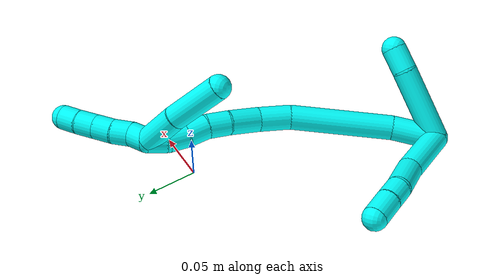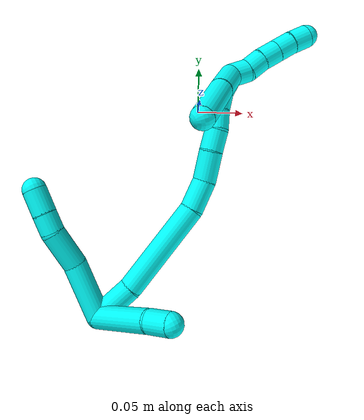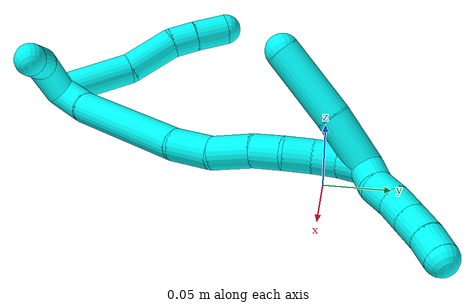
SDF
<sdf version="1.7">
 <world name="default">
  <model name="3">
   <static>0</static>
   <link name="3">
    <collision name="collision-cylinder-e_1_2_8">
     <pose>0.021013 0.022057 0.000849 -1.53234 0.760809 -0.734656</pose>
     <geometry><cylinder><radius>0.0125</radius><length>0.060951</length></cylinder></geometry>
     <surface>
      <friction><ode><mu>1.16</mu><mu2>1.16</mu2><slip1>0</slip1><slip2>0</slip2></ode></friction>
      <contact><ode><kp>1e+06</kp><kd>1</kd><max_vel>0</max_vel><min_depth>0.001</min_depth></ode></contact>
     </surface>
    </collision>
    <visual name="visual-cylinder-e_1_2_8">
     <pose>0.021013 0.022057 0.000849 -1.53234 0.760809 -0.734656</pose>
     <geometry><cylinder><radius>0.0125</radius><length>0.060951</length></cylinder></geometry>
     <material><ambient>0.003922 1 0.996078 1</ambient></material>
    </visual>
    <collision name="collision-cylinder-e_2_8_9">
     <pose>0.057944 0.056402 0.006329 -1.21037 0.880973 -0.630427</pose>
     <geometry><cylinder><radius>0.0125</radius><length>0.041271</length></cylinder></geometry>
     <surface>
      <friction><ode><mu>1.16</mu><mu2>1.16</mu2><slip1>0</slip1><slip2>0</slip2></ode></friction>
      <contact><ode><kp>1e+06</kp><kd>1</kd><max_vel>0</max_vel><min_depth>0.001</min_depth></ode></contact>
     </surface>
    </collision>
    <visual name="visual-cylinder-e_2_8_9">
     <pose>0.057944 0.056402 0.006329 -1.21037 0.880973 -0.630427</pose>
     <geometry><cylinder><radius>0.0125</radius><length>0.041271</length></cylinder></geometry>
     <material><ambient>0.003922 1 0.996078 1</ambient></material>
    </visual>
    <collision name="collision-cylinder-e_3_9_10">
     <pose>0.080882 0.076382 0.011166 -1.54406 0.739667 -0.721823</pose>
     <geometry><cylinder><radius>0.0125</radius><length>0.020831</length></cylinder></geometry>
     <surface>
      <friction><ode><mu>1.16</mu><mu2>1.16</mu2><slip1>0</slip1><slip2>0</slip2></ode></friction>
      <contact><ode><kp>1e+06</kp><kd>1</kd><max_vel>0</max_vel><min_depth>0.001</min_depth></ode></contact>
     </surface>
    </collision>
    <visual name="visual-cylinder-e_3_9_10">
     <pose>0.080882 0.076382 0.011166 -1.54406 0.739667 -0.721823</pose>
     <geometry><cylinder><radius>0.0125</radius><length>0.020831</length></cylinder></geometry>
     <material><ambient>0.003922 1 0.996078 1</ambient></material>
    </visual>
    <collision name="collision-cylinder-e_4_10_6">
     <pose>0.096442 0.094494 0.01137 -1.5709 0.686515 -0.686582</pose>
     <geometry><cylinder><radius>0.0125</radius><length>0.026946</length></cylinder></geometry>
     <surface>
      <friction><ode><mu>1.16</mu><mu2>1.16</mu2><slip1>0</slip1><slip2>0</slip2></ode></friction>
      <contact><ode><kp>1e+06</kp><kd>1</kd><max_vel>0</max_vel><min_depth>0.001</min_depth></ode></contact>
     </surface>
    </collision>
    <visual name="visual-cylinder-e_4_10_6">
     <pose>0.096442 0.094494 0.01137 -1.5709 0.686515 -0.686582</pose>
     <geometry><cylinder><radius>0.0125</radius><length>0.026946</length></cylinder></geometry>
     <material><ambient>0.003922 1 0.996078 1</ambient></material>
    </visual>
    <collision name="collision-cylinder-e_1_2_11">
     <pose>0.020638 -0.02606 -0.017524 2.16279 0.581413 1.02359</pose>
     <geometry><cylinder><radius>0.0125</radius><length>0.075157</length></cylinder></geometry>
     <surface>
      <friction><ode><mu>1.16</mu><mu2>1.16</mu2><slip1>0</slip1><slip2>0</slip2></ode></friction>
      <contact><ode><kp>1e+06</kp><kd>1</kd><max_vel>0</max_vel><min_depth>0.001</min_depth></ode></contact>
     </surface>
    </collision>
    <visual name="visual-cylinder-e_1_2_11">
     <pose>0.020638 -0.02606 -0.017524 2.16279 0.581413 1.02359</pose>
     <geometry><cylinder><radius>0.0125</radius><length>0.075157</length></cylinder></geometry>
     <material><ambient>0.003922 1 0.996078 1</ambient></material>
    </visual>
    <collision name="collision-cylinder-e_2_11_5">
     <pose>0.045948 -0.061174 -0.042153 2.23615 0.385561 0.763272</pose>
     <geometry><cylinder><radius>0.0125</radius><length>0.024843</length></cylinder></geometry>
     <surface>
      <friction><ode><mu>1.16</mu><mu2>1.16</mu2><slip1>0</slip1><slip2>0</slip2></ode></friction>
      <contact><ode><kp>1e+06</kp><kd>1</kd><max_vel>0</max_vel><min_depth>0.001</min_depth></ode></contact>
     </surface>
    </collision>
    <visual name="visual-cylinder-e_2_11_5">
     <pose>0.045948 -0.061174 -0.042153 2.23615 0.385561 0.763272</pose>
     <geometry><cylinder><radius>0.0125</radius><length>0.024843</length></cylinder></geometry>
     <material><ambient>0.003922 1 0.996078 1</ambient></material>
    </visual>
    <collision name="collision-cylinder-e_1_2_12">
     <pose>0.009476 0.001541 -0.020245 -3.06562 0.43668 -2.80233</pose>
     <geometry><cylinder><radius>0.0125</radius><length>0.044812</length></cylinder></geometry>
     <surface>
      <friction><ode><mu>1.16</mu><mu2>1.16</mu2><slip1>0</slip1><slip2>0</slip2></ode></friction>
      <contact><ode><kp>1e+06</kp><kd>1</kd><max_vel>0</max_vel><min_depth>0.001</min_depth></ode></contact>
     </surface>
    </collision>
    <visual name="visual-cylinder-e_1_2_12">
     <pose>0.009476 0.001541 -0.020245 -3.06562 0.43668 -2.80233</pose>
     <geometry><cylinder><radius>0.0125</radius><length>0.044812</length></cylinder></geometry>
     <material><ambient>0.003922 1 0.996078 1</ambient></material>
    </visual>
    <collision name="collision-cylinder-e_2_12_13">
     <pose>0.0455 0.014162 -0.084132 -2.89296 0.532735 -2.28263</pose>
     <geometry><cylinder><radius>0.0125</radius><length>0.104542</length></cylinder></geometry>
     <surface>
      <friction><ode><mu>1.16</mu><mu2>1.16</mu2><slip1>0</slip1><slip2>0</slip2></ode></friction>
      <contact><ode><kp>1e+06</kp><kd>1</kd><max_vel>0</max_vel><min_depth>0.001</min_depth></ode></contact>
     </surface>
    </collision>
    <visual name="visual-cylinder-e_2_12_13">
     <pose>0.0455 0.014162 -0.084132 -2.89296 0.532735 -2.28263</pose>
     <geometry><cylinder><radius>0.0125</radius><length>0.104542</length></cylinder></geometry>
     <material><ambient>0.003922 1 0.996078 1</ambient></material>
    </visual>
    <collision name="collision-cylinder-e_3_13_14">
     <pose>0.081713 0.031797 -0.139525 -2.63276 0.622908 -1.78265</pose>
     <geometry><cylinder><radius>0.0125</radius><length>0.033131</length></cylinder></geometry>
     <surface>
      <friction><ode><mu>1.16</mu><mu2>1.16</mu2><slip1>0</slip1><slip2>0</slip2></ode></friction>
      <contact><ode><kp>1e+06</kp><kd>1</kd><max_vel>0</max_vel><min_depth>0.001</min_depth></ode></contact>
     </surface>
    </collision>
    <visual name="visual-cylinder-e_3_13_14">
     <pose>0.081713 0.031797 -0.139525 -2.63276 0.622908 -1.78265</pose>
     <geometry><cylinder><radius>0.0125</radius><length>0.033131</length></cylinder></geometry>
     <material><ambient>0.003922 1 0.996078 1</ambient></material>
    </visual>
    <collision name="collision-cylinder-e_4_14_15">
     <pose>0.103596 0.045447 -0.159481 -2.42864 0.844751 -1.75775</pose>
     <geometry><cylinder><radius>0.0125</radius><length>0.03268</length></cylinder></geometry>
     <surface>
      <friction><ode><mu>1.16</mu><mu2>1.16</mu2><slip1>0</slip1><slip2>0</slip2></ode></friction>
      <contact><ode><kp>1e+06</kp><kd>1</kd><max_vel>0</max_vel><min_depth>0.001</min_depth></ode></contact>
     </surface>
    </collision>
    <visual name="visual-cylinder-e_4_14_15">
     <pose>0.103596 0.045447 -0.159481 -2.42864 0.844751 -1.75775</pose>
     <geometry><cylinder><radius>0.0125</radius><length>0.03268</length></cylinder></geometry>
     <material><ambient>0.003922 1 0.996078 1</ambient></material>
    </visual>
    <collision name="collision-cylinder-e_5_15_16">
     <pose>0.123361 0.0581 -0.17436 -2.44714 0.715385 -1.6031</pose>
     <geometry><cylinder><radius>0.0125</radius><length>0.023008</length></cylinder></geometry>
     <surface>
      <friction><ode><mu>1.16</mu><mu2>1.16</mu2><slip1>0</slip1><slip2>0</slip2></ode></friction>
      <contact><ode><kp>1e+06</kp><kd>1</kd><max_vel>0</max_vel><min_depth>0.001</min_depth></ode></contact>
     </surface>
    </collision>
    <visual name="visual-cylinder-e_5_15_16">
     <pose>0.123361 0.0581 -0.17436 -2.44714 0.715385 -1.6031</pose>
     <geometry><cylinder><radius>0.0125</radius><length>0.023008</length></cylinder></geometry>
     <material><ambient>0.003922 1 0.996078 1</ambient></material>
    </visual>
    <collision name="collision-cylinder-e_6_16_17">
     <pose>0.137133 0.070945 -0.186217 -2.18915 0.608118 -1.09305</pose>
     <geometry><cylinder><radius>0.0125</radius><length>0.021796</length></cylinder></geometry>
     <surface>
      <friction><ode><mu>1.16</mu><mu2>1.16</mu2><slip1>0</slip1><slip2>0</slip2></ode></friction>
      <contact><ode><kp>1e+06</kp><kd>1</kd><max_vel>0</max_vel><min_depth>0.001</min_depth></ode></contact>
     </surface>
    </collision>
    <visual name="visual-cylinder-e_6_16_17">
     <pose>0.137133 0.070945 -0.186217 -2.18915 0.608118 -1.09305</pose>
     <geometry><cylinder><radius>0.0125</radius><length>0.021796</length></cylinder></geometry>
     <material><ambient>0.003922 1 0.996078 1</ambient></material>
    </visual>
    <collision name="collision-cylinder-e_7_17_18">
     <pose>0.149148 0.083922 -0.19726 -2.37088 0.616711 -1.33133</pose>
     <geometry><cylinder><radius>0.0125</radius><length>0.020019</length></cylinder></geometry>
     <surface>
      <friction><ode><mu>1.16</mu><mu2>1.16</mu2><slip1>0</slip1><slip2>0</slip2></ode></friction>
      <contact><ode><kp>1e+06</kp><kd>1</kd><max_vel>0</max_vel><min_depth>0.001</min_depth></ode></contact>
     </surface>
    </collision>
    <visual name="visual-cylinder-e_7_17_18">
     <pose>0.149148 0.083922 -0.19726 -2.37088 0.616711 -1.33133</pose>
     <geometry><cylinder><radius>0.0125</radius><length>0.020019</length></cylinder></geometry>
     <material><ambient>0.003922 1 0.996078 1</ambient></material>
    </visual>
    <collision name="collision-cylinder-e_8_18_1">
     <pose>0.160641 0.092966 -0.210623 -2.72111 0.606588 -1.94467</pose>
     <geometry><cylinder><radius>0.0125</radius><length>0.020012</length></cylinder></geometry>
     <surface>
      <friction><ode><mu>1.16</mu><mu2>1.16</mu2><slip1>0</slip1><slip2>0</slip2></ode></friction>
      <contact><ode><kp>1e+06</kp><kd>1</kd><max_vel>0</max_vel><min_depth>0.001</min_depth></ode></contact>
     </surface>
    </collision>
    <visual name="visual-cylinder-e_8_18_1">
     <pose>0.160641 0.092966 -0.210623 -2.72111 0.606588 -1.94467</pose>
     <geometry><cylinder><radius>0.0125</radius><length>0.020012</length></cylinder></geometry>
     <material><ambient>0.003922 1 0.996078 1</ambient></material>
    </visual>
    <collision name="collision-cylinder-e_1_1_19">
     <pose>0.171771 0.082863 -0.202764 0.719396 0.259637 0.098112</pose>
     <geometry><cylinder><radius>0.0125</radius><length>0.042268</length></cylinder></geometry>
     <surface>
      <friction><ode><mu>1.16</mu><mu2>1.16</mu2><slip1>0</slip1><slip2>0</slip2></ode></friction>
      <contact><ode><kp>1e+06</kp><kd>1</kd><max_vel>0</max_vel><min_depth>0.001</min_depth></ode></contact>
     </surface>
    </collision>
    <visual name="visual-cylinder-e_1_1_19">
     <pose>0.171771 0.082863 -0.202764 0.719396 0.259637 0.098112</pose>
     <geometry><cylinder><radius>0.0125</radius><length>0.042268</length></cylinder></geometry>
     <material><ambient>0.003922 1 0.996078 1</ambient></material>
    </visual>
    <collision name="collision-cylinder-e_2_19_4">
     <pose>0.181996 0.051188 -0.165526 0.694412 0.16703 0.060565</pose>
     <geometry><cylinder><radius>0.0125</radius><length>0.057732</length></cylinder></geometry>
     <surface>
      <friction><ode><mu>1.16</mu><mu2>1.16</mu2><slip1>0</slip1><slip2>0</slip2></ode></friction>
      <contact><ode><kp>1e+06</kp><kd>1</kd><max_vel>0</max_vel><min_depth>0.001</min_depth></ode></contact>
     </surface>
    </collision>
    <visual name="visual-cylinder-e_2_19_4">
     <pose>0.181996 0.051188 -0.165526 0.694412 0.16703 0.060565</pose>
     <geometry><cylinder><radius>0.0125</radius><length>0.057732</length></cylinder></geometry>
     <material><ambient>0.003922 1 0.996078 1</ambient></material>
    </visual>
    <collision name="collision-cylinder-e_1_1_20">
     <pose>0.166696 0.095245 -0.228064 3.03361 0.035052 0.627264</pose>
     <geometry><cylinder><radius>0.0125</radius><length>0.02</length></cylinder></geometry>
     <surface>
      <friction><ode><mu>1.16</mu><mu2>1.16</mu2><slip1>0</slip1><slip2>0</slip2></ode></friction>
      <contact><ode><kp>1e+06</kp><kd>1</kd><max_vel>0</max_vel><min_depth>0.001</min_depth></ode></contact>
     </surface>
    </collision>
    <visual name="visual-cylinder-e_1_1_20">
     <pose>0.166696 0.095245 -0.228064 3.03361 0.035052 0.627264</pose>
     <geometry><cylinder><radius>0.0125</radius><length>0.02</length></cylinder></geometry>
     <material><ambient>0.003922 1 0.996078 1</ambient></material>
    </visual>
    <collision name="collision-cylinder-e_2_20_21">
     <pose>0.169745 0.095504 -0.247535 -3.00242 0.27322 -2.2031</pose>
     <geometry><cylinder><radius>0.0125</radius><length>0.02</length></cylinder></geometry>
     <surface>
      <friction><ode><mu>1.16</mu><mu2>1.16</mu2><slip1>0</slip1><slip2>0</slip2></ode></friction>
      <contact><ode><kp>1e+06</kp><kd>1</kd><max_vel>0</max_vel><min_depth>0.001</min_depth></ode></contact>
     </surface>
    </collision>
    <visual name="visual-cylinder-e_2_20_21">
     <pose>0.169745 0.095504 -0.247535 -3.00242 0.27322 -2.2031</pose>
     <geometry><cylinder><radius>0.0125</radius><length>0.02</length></cylinder></geometry>
     <material><ambient>0.003922 1 0.996078 1</ambient></material>
    </visual>
    <collision name="collision-cylinder-e_3_21_22">
     <pose>0.174414 0.097002 -0.266874 -3.12497 0.198422 -2.97496</pose>
     <geometry><cylinder><radius>0.0125</radius><length>0.02</length></cylinder></geometry>
     <surface>
      <friction><ode><mu>1.16</mu><mu2>1.16</mu2><slip1>0</slip1><slip2>0</slip2></ode></friction>
      <contact><ode><kp>1e+06</kp><kd>1</kd><max_vel>0</max_vel><min_depth>0.001</min_depth></ode></contact>
     </surface>
    </collision>
    <visual name="visual-cylinder-e_3_21_22">
     <pose>0.174414 0.097002 -0.266874 -3.12497 0.198422 -2.97496</pose>
     <geometry><cylinder><radius>0.0125</radius><length>0.02</length></cylinder></geometry>
     <material><ambient>0.003922 1 0.996078 1</ambient></material>
    </visual>
    <collision name="collision-cylinder-e_4_22_23">
     <pose>0.178357 0.097329 -0.286478 -3.12487 0.198472 -2.97399</pose>
     <geometry><cylinder><radius>0.0125</radius><length>0.02</length></cylinder></geometry>
     <surface>
      <friction><ode><mu>1.16</mu><mu2>1.16</mu2><slip1>0</slip1><slip2>0</slip2></ode></friction>
      <contact><ode><kp>1e+06</kp><kd>1</kd><max_vel>0</max_vel><min_depth>0.001</min_depth></ode></contact>
     </surface>
    </collision>
    <visual name="visual-cylinder-e_4_22_23">
     <pose>0.178357 0.097329 -0.286478 -3.12487 0.198472 -2.97399</pose>
     <geometry><cylinder><radius>0.0125</radius><length>0.02</length></cylinder></geometry>
     <material><ambient>0.003922 1 0.996078 1</ambient></material>
    </visual>
    <collision name="collision-cylinder-e_5_23_3">
     <pose>0.181359 0.097206 -0.306223 3.11275 0.103152 2.5968</pose>
     <geometry><cylinder><radius>0.0125</radius><length>0.02</length></cylinder></geometry>
     <surface>
      <friction><ode><mu>1.16</mu><mu2>1.16</mu2><slip1>0</slip1><slip2>0</slip2></ode></friction>
      <contact><ode><kp>1e+06</kp><kd>1</kd><max_vel>0</max_vel><min_depth>0.001</min_depth></ode></contact>
     </surface>
    </collision>
    <visual name="visual-cylinder-e_5_23_3">
     <pose>0.181359 0.097206 -0.306223 3.11275 0.103152 2.5968</pose>
     <geometry><cylinder><radius>0.0125</radius><length>0.02</length></cylinder></geometry>
     <material><ambient>0.003922 1 0.996078 1</ambient></material>
    </visual>
    <collision name="collision-sphere-3">
     <pose>0.182388 0.09692 -0.316166 0 -0 0</pose>
     <geometry><sphere><radius>0.0125</radius></sphere></geometry>
     <surface>
      <friction><ode><mu>1.16</mu><mu2>1.16</mu2><slip1>0</slip1><slip2>0</slip2></ode></friction>
      <contact><ode><kp>1e+06</kp><kd>1</kd><max_vel>0</max_vel><min_depth>0.001</min_depth></ode></contact>
     </surface>
    </collision>
    <visual name="visual-sphere-3">
     <pose>0.182388 0.09692 -0.316166 0 -0 0</pose>
     <geometry><sphere><radius>0.0125</radius></sphere></geometry>
     <material><ambient>0.003922 1 0.996078 1</ambient></material>
    </visual>
    <collision name="collision-sphere-23">
     <pose>0.180329 0.097493 -0.296281 0 -0 0</pose>
     <geometry><sphere><radius>0.0125</radius></sphere></geometry>
     <surface>
      <friction><ode><mu>1.16</mu><mu2>1.16</mu2><slip1>0</slip1><slip2>0</slip2></ode></friction>
      <contact><ode><kp>1e+06</kp><kd>1</kd><max_vel>0</max_vel><min_depth>0.001</min_depth></ode></contact>
     </surface>
    </collision>
    <visual name="visual-sphere-23">
     <pose>0.180329 0.097493 -0.296281 0 -0 0</pose>
     <geometry><sphere><radius>0.0125</radius></sphere></geometry>
     <material><ambient>0.003922 1 0.996078 1</ambient></material>
    </visual>
    <collision name="collision-sphere-22">
     <pose>0.176385 0.097165 -0.276676 0 -0 0</pose>
     <geometry><sphere><radius>0.0125</radius></sphere></geometry>
     <surface>
      <friction><ode><mu>1.16</mu><mu2>1.16</mu2><slip1>0</slip1><slip2>0</slip2></ode></friction>
      <contact><ode><kp>1e+06</kp><kd>1</kd><max_vel>0</max_vel><min_depth>0.001</min_depth></ode></contact>
     </surface>
    </collision>
    <visual name="visual-sphere-22">
     <pose>0.176385 0.097165 -0.276676 0 -0 0</pose>
     <geometry><sphere><radius>0.0125</radius></sphere></geometry>
     <material><ambient>0.003922 1 0.996078 1</ambient></material>
    </visual>
    <collision name="collision-sphere-21">
     <pose>0.172443 0.096839 -0.257071 0 -0 0</pose>
     <geometry><sphere><radius>0.0125</radius></sphere></geometry>
     <surface>
      <friction><ode><mu>1.16</mu><mu2>1.16</mu2><slip1>0</slip1><slip2>0</slip2></ode></friction>
      <contact><ode><kp>1e+06</kp><kd>1</kd><max_vel>0</max_vel><min_depth>0.001</min_depth></ode></contact>
     </surface>
    </collision>
    <visual name="visual-sphere-21">
     <pose>0.172443 0.096839 -0.257071 0 -0 0</pose>
     <geometry><sphere><radius>0.0125</radius></sphere></geometry>
     <material><ambient>0.003922 1 0.996078 1</ambient></material>
    </visual>
    <collision name="collision-sphere-20">
     <pose>0.167046 0.094168 -0.237999 0 -0 0</pose>
     <geometry><sphere><radius>0.0125</radius></sphere></geometry>
     <surface>
      <friction><ode><mu>1.16</mu><mu2>1.16</mu2><slip1>0</slip1><slip2>0</slip2></ode></friction>
      <contact><ode><kp>1e+06</kp><kd>1</kd><max_vel>0</max_vel><min_depth>0.001</min_depth></ode></contact>
     </surface>
    </collision>
    <visual name="visual-sphere-20">
     <pose>0.167046 0.094168 -0.237999 0 -0 0</pose>
     <geometry><sphere><radius>0.0125</radius></sphere></geometry>
     <material><ambient>0.003922 1 0.996078 1</ambient></material>
    </visual>
    <collision name="collision-sphere-4">
     <pose>0.186795 0.032973 -0.143654 0 -0 0</pose>
     <geometry><sphere><radius>0.0125</radius></sphere></geometry>
     <surface>
      <friction><ode><mu>1.16</mu><mu2>1.16</mu2><slip1>0</slip1><slip2>0</slip2></ode></friction>
      <contact><ode><kp>1e+06</kp><kd>1</kd><max_vel>0</max_vel><min_depth>0.001</min_depth></ode></contact>
     </surface>
    </collision>
    <visual name="visual-sphere-4">
     <pose>0.186795 0.032973 -0.143654 0 -0 0</pose>
     <geometry><sphere><radius>0.0125</radius></sphere></geometry>
     <material><ambient>0.003922 1 0.996078 1</ambient></material>
    </visual>
    <collision name="collision-sphere-11">
     <pose>0.041276 -0.05212 -0.035047 0 -0 0</pose>
     <geometry><sphere><radius>0.0125</radius></sphere></geometry>
     <surface>
      <friction><ode><mu>1.16</mu><mu2>1.16</mu2><slip1>0</slip1><slip2>0</slip2></ode></friction>
      <contact><ode><kp>1e+06</kp><kd>1</kd><max_vel>0</max_vel><min_depth>0.001</min_depth></ode></contact>
     </surface>
    </collision>
    <visual name="visual-sphere-11">
     <pose>0.041276 -0.05212 -0.035047 0 -0 0</pose>
     <geometry><sphere><radius>0.0125</radius></sphere></geometry>
     <material><ambient>0.003922 1 0.996078 1</ambient></material>
    </visual>
    <collision name="collision-sphere-6">
     <pose>0.104982 0.104915 0.011369 0 -0 0</pose>
     <geometry><sphere><radius>0.0125</radius></sphere></geometry>
     <surface>
      <friction><ode><mu>1.16</mu><mu2>1.16</mu2><slip1>0</slip1><slip2>0</slip2></ode></friction>
      <contact><ode><kp>1e+06</kp><kd>1</kd><max_vel>0</max_vel><min_depth>0.001</min_depth></ode></contact>
     </surface>
    </collision>
    <visual name="visual-sphere-6">
     <pose>0.104982 0.104915 0.011369 0 -0 0</pose>
     <geometry><sphere><radius>0.0125</radius></sphere></geometry>
     <material><ambient>0.003922 1 0.996078 1</ambient></material>
    </visual>
    <collision name="collision-sphere-10">
     <pose>0.087902 0.084073 0.011371 0 -0 0</pose>
     <geometry><sphere><radius>0.0125</radius></sphere></geometry>
     <surface>
      <friction><ode><mu>1.16</mu><mu2>1.16</mu2><slip1>0</slip1><slip2>0</slip2></ode></friction>
      <contact><ode><kp>1e+06</kp><kd>1</kd><max_vel>0</max_vel><min_depth>0.001</min_depth></ode></contact>
     </surface>
    </collision>
    <visual name="visual-sphere-10">
     <pose>0.087902 0.084073 0.011371 0 -0 0</pose>
     <geometry><sphere><radius>0.0125</radius></sphere></geometry>
     <material><ambient>0.003922 1 0.996078 1</ambient></material>
    </visual>
    <collision name="collision-sphere-9">
     <pose>0.073861 0.06869 0.01096 0 -0 0</pose>
     <geometry><sphere><radius>0.0125</radius></sphere></geometry>
     <surface>
      <friction><ode><mu>1.16</mu><mu2>1.16</mu2><slip1>0</slip1><slip2>0</slip2></ode></friction>
      <contact><ode><kp>1e+06</kp><kd>1</kd><max_vel>0</max_vel><min_depth>0.001</min_depth></ode></contact>
     </surface>
    </collision>
    <visual name="visual-sphere-9">
     <pose>0.073861 0.06869 0.01096 0 -0 0</pose>
     <geometry><sphere><radius>0.0125</radius></sphere></geometry>
     <material><ambient>0.003922 1 0.996078 1</ambient></material>
    </visual>
    <collision name="collision-sphere-2">
     <geometry><sphere><radius>0.0125</radius></sphere></geometry>
     <surface>
      <friction><ode><mu>1.16</mu><mu2>1.16</mu2><slip1>0</slip1><slip2>0</slip2></ode></friction>
      <contact><ode><kp>1e+06</kp><kd>1</kd><max_vel>0</max_vel><min_depth>0.001</min_depth></ode></contact>
     </surface>
    </collision>
    <visual name="visual-sphere-2">
     <geometry><sphere><radius>0.0125</radius></sphere></geometry>
     <material><ambient>0.003922 1 0.996078 1</ambient></material>
    </visual>
    <collision name="collision-sphere-19">
     <pose>0.177197 0.069404 -0.187399 0 -0 0</pose>
     <geometry><sphere><radius>0.0125</radius></sphere></geometry>
     <surface>
      <friction><ode><mu>1.16</mu><mu2>1.16</mu2><slip1>0</slip1><slip2>0</slip2></ode></friction>
      <contact><ode><kp>1e+06</kp><kd>1</kd><max_vel>0</max_vel><min_depth>0.001</min_depth></ode></contact>
     </surface>
    </collision>
    <visual name="visual-sphere-19">
     <pose>0.177197 0.069404 -0.187399 0 -0 0</pose>
     <geometry><sphere><radius>0.0125</radius></sphere></geometry>
     <material><ambient>0.003922 1 0.996078 1</ambient></material>
    </visual>
    <collision name="collision-sphere-8">
     <pose>0.042026 0.044113 0.001697 0 -0 0</pose>
     <geometry><sphere><radius>0.0125</radius></sphere></geometry>
     <surface>
      <friction><ode><mu>1.16</mu><mu2>1.16</mu2><slip1>0</slip1><slip2>0</slip2></ode></friction>
      <contact><ode><kp>1e+06</kp><kd>1</kd><max_vel>0</max_vel><min_depth>0.001</min_depth></ode></contact>
     </surface>
    </collision>
    <visual name="visual-sphere-8">
     <pose>0.042026 0.044113 0.001697 0 -0 0</pose>
     <geometry><sphere><radius>0.0125</radius></sphere></geometry>
     <material><ambient>0.003922 1 0.996078 1</ambient></material>
    </visual>
    <collision name="collision-sphere-5">
     <pose>0.050619 -0.070229 -0.049258 0 -0 0</pose>
     <geometry><sphere><radius>0.0125</radius></sphere></geometry>
     <surface>
      <friction><ode><mu>1.16</mu><mu2>1.16</mu2><slip1>0</slip1><slip2>0</slip2></ode></friction>
      <contact><ode><kp>1e+06</kp><kd>1</kd><max_vel>0</max_vel><min_depth>0.001</min_depth></ode></contact>
     </surface>
    </collision>
    <visual name="visual-sphere-5">
     <pose>0.050619 -0.070229 -0.049258 0 -0 0</pose>
     <geometry><sphere><radius>0.0125</radius></sphere></geometry>
     <material><ambient>0.003922 1 0.996078 1</ambient></material>
    </visual>
    <collision name="collision-sphere-12">
     <pose>0.018953 0.003082 -0.04049 0 -0 0</pose>
     <geometry><sphere><radius>0.0125</radius></sphere></geometry>
     <surface>
      <friction><ode><mu>1.16</mu><mu2>1.16</mu2><slip1>0</slip1><slip2>0</slip2></ode></friction>
      <contact><ode><kp>1e+06</kp><kd>1</kd><max_vel>0</max_vel><min_depth>0.001</min_depth></ode></contact>
     </surface>
    </collision>
    <visual name="visual-sphere-12">
     <pose>0.018953 0.003082 -0.04049 0 -0 0</pose>
     <geometry><sphere><radius>0.0125</radius></sphere></geometry>
     <material><ambient>0.003922 1 0.996078 1</ambient></material>
    </visual>
    <collision name="collision-sphere-13">
     <pose>0.072048 0.025243 -0.127775 0 -0 0</pose>
     <geometry><sphere><radius>0.0125</radius></sphere></geometry>
     <surface>
      <friction><ode><mu>1.16</mu><mu2>1.16</mu2><slip1>0</slip1><slip2>0</slip2></ode></friction>
      <contact><ode><kp>1e+06</kp><kd>1</kd><max_vel>0</max_vel><min_depth>0.001</min_depth></ode></contact>
     </surface>
    </collision>
    <visual name="visual-sphere-13">
     <pose>0.072048 0.025243 -0.127775 0 -0 0</pose>
     <geometry><sphere><radius>0.0125</radius></sphere></geometry>
     <material><ambient>0.003922 1 0.996078 1</ambient></material>
    </visual>
    <collision name="collision-sphere-14">
     <pose>0.091377 0.038351 -0.151275 0 -0 0</pose>
     <geometry><sphere><radius>0.0125</radius></sphere></geometry>
     <surface>
      <friction><ode><mu>1.16</mu><mu2>1.16</mu2><slip1>0</slip1><slip2>0</slip2></ode></friction>
      <contact><ode><kp>1e+06</kp><kd>1</kd><max_vel>0</max_vel><min_depth>0.001</min_depth></ode></contact>
     </surface>
    </collision>
    <visual name="visual-sphere-14">
     <pose>0.091377 0.038351 -0.151275 0 -0 0</pose>
     <geometry><sphere><radius>0.0125</radius></sphere></geometry>
     <material><ambient>0.003922 1 0.996078 1</ambient></material>
    </visual>
    <collision name="collision-sphere-15">
     <pose>0.115815 0.052543 -0.167687 0 -0 0</pose>
     <geometry><sphere><radius>0.0125</radius></sphere></geometry>
     <surface>
      <friction><ode><mu>1.16</mu><mu2>1.16</mu2><slip1>0</slip1><slip2>0</slip2></ode></friction>
      <contact><ode><kp>1e+06</kp><kd>1</kd><max_vel>0</max_vel><min_depth>0.001</min_depth></ode></contact>
     </surface>
    </collision>
    <visual name="visual-sphere-15">
     <pose>0.115815 0.052543 -0.167687 0 -0 0</pose>
     <geometry><sphere><radius>0.0125</radius></sphere></geometry>
     <material><ambient>0.003922 1 0.996078 1</ambient></material>
    </visual>
    <collision name="collision-sphere-16">
     <pose>0.130907 0.063657 -0.181032 0 -0 0</pose>
     <geometry><sphere><radius>0.0125</radius></sphere></geometry>
     <surface>
      <friction><ode><mu>1.16</mu><mu2>1.16</mu2><slip1>0</slip1><slip2>0</slip2></ode></friction>
      <contact><ode><kp>1e+06</kp><kd>1</kd><max_vel>0</max_vel><min_depth>0.001</min_depth></ode></contact>
     </surface>
    </collision>
    <visual name="visual-sphere-16">
     <pose>0.130907 0.063657 -0.181032 0 -0 0</pose>
     <geometry><sphere><radius>0.0125</radius></sphere></geometry>
     <material><ambient>0.003922 1 0.996078 1</ambient></material>
    </visual>
    <collision name="collision-sphere-17">
     <pose>0.143359 0.078233 -0.191402 0 -0 0</pose>
     <geometry><sphere><radius>0.0125</radius></sphere></geometry>
     <surface>
      <friction><ode><mu>1.16</mu><mu2>1.16</mu2><slip1>0</slip1><slip2>0</slip2></ode></friction>
      <contact><ode><kp>1e+06</kp><kd>1</kd><max_vel>0</max_vel><min_depth>0.001</min_depth></ode></contact>
     </surface>
    </collision>
    <visual name="visual-sphere-17">
     <pose>0.143359 0.078233 -0.191402 0 -0 0</pose>
     <geometry><sphere><radius>0.0125</radius></sphere></geometry>
     <material><ambient>0.003922 1 0.996078 1</ambient></material>
    </visual>
    <collision name="collision-sphere-18">
     <pose>0.154937 0.08961 -0.203118 0 -0 0</pose>
     <geometry><sphere><radius>0.0125</radius></sphere></geometry>
     <surface>
      <friction><ode><mu>1.16</mu><mu2>1.16</mu2><slip1>0</slip1><slip2>0</slip2></ode></friction>
      <contact><ode><kp>1e+06</kp><kd>1</kd><max_vel>0</max_vel><min_depth>0.001</min_depth></ode></contact>
     </surface>
    </collision>
    <visual name="visual-sphere-18">
     <pose>0.154937 0.08961 -0.203118 0 -0 0</pose>
     <geometry><sphere><radius>0.0125</radius></sphere></geometry>
     <material><ambient>0.003922 1 0.996078 1</ambient></material>
    </visual>
    <collision name="collision-sphere-1">
     <pose>0.166345 0.096322 -0.218128 0 -0 0</pose>
     <geometry><sphere><radius>0.0125</radius></sphere></geometry>
     <surface>
      <friction><ode><mu>1.16</mu><mu2>1.16</mu2><slip1>0</slip1><slip2>0</slip2></ode></friction>
      <contact><ode><kp>1e+06</kp><kd>1</kd><max_vel>0</max_vel><min_depth>0.001</min_depth></ode></contact>
     </surface>
    </collision>
    <visual name="visual-sphere-1">
     <pose>0.166345 0.096322 -0.218128 0 -0 0</pose>
     <geometry><sphere><radius>0.0125</radius></sphere></geometry>
     <material><ambient>0.003922 1 0.996078 1</ambient></material>
    </visual>
    <inertial>
     <pose>0.092172 0.041262 -0.109485 0 -0 0</pose>
     <mass>0.75</mass>
     <inertia>
      <ixx>-4.2e-05</ixx>
      <ixy>0</ixy>
      <ixz>0</ixz>
      <iyy>7.5e-05</iyy>
      <iyz>0</iyz>
      <izz>-0.000144</izz>
     </inertia>
    </inertial>
   </link>
   <pose>-0.098785 -0.226443 0.011699 -1.07553 -0.948271 1.62807</pose>
  </model>
 </world>
</sdf>
